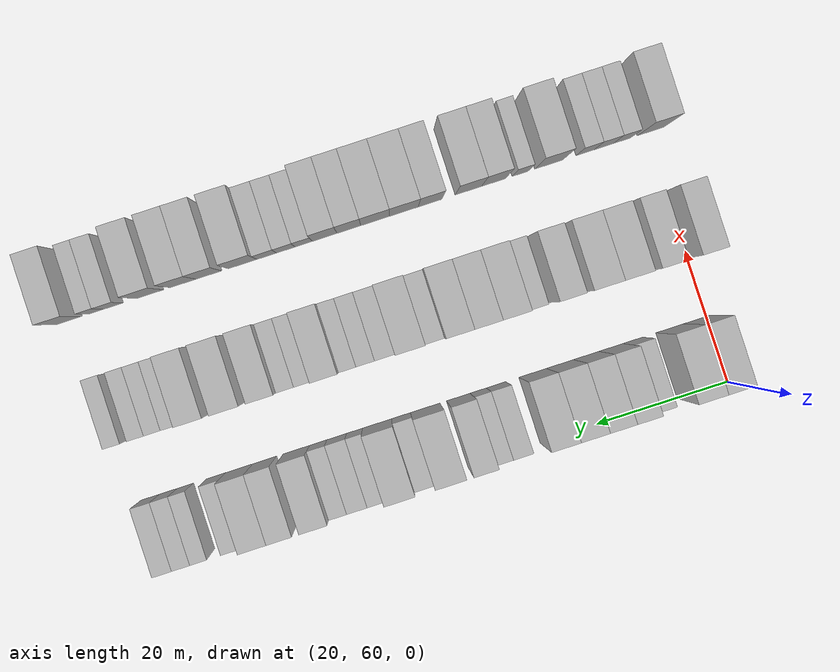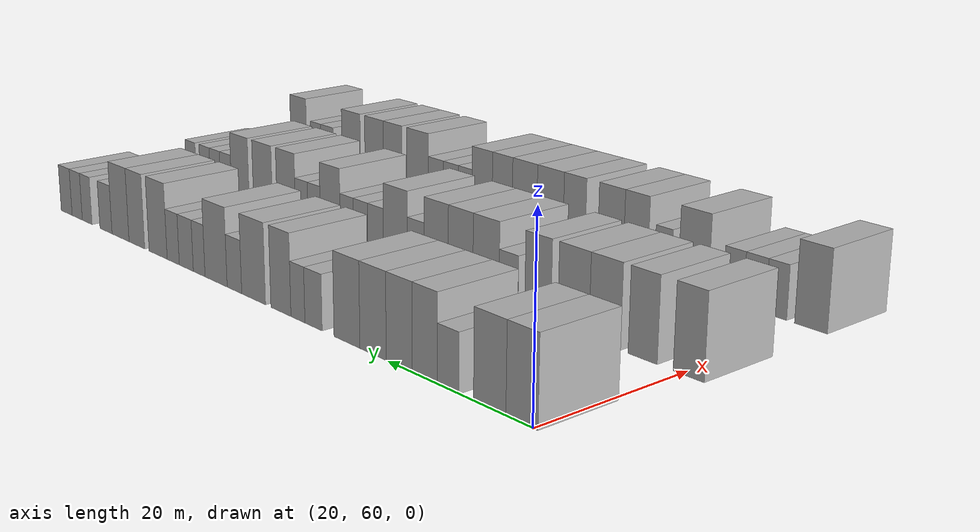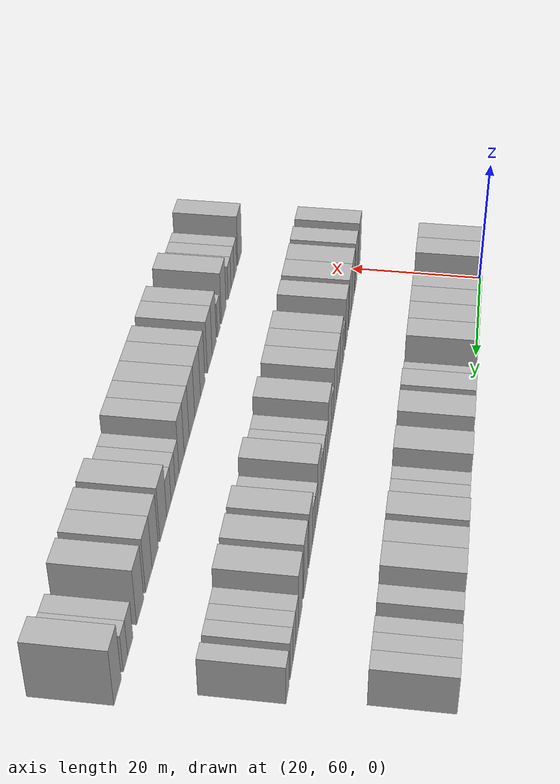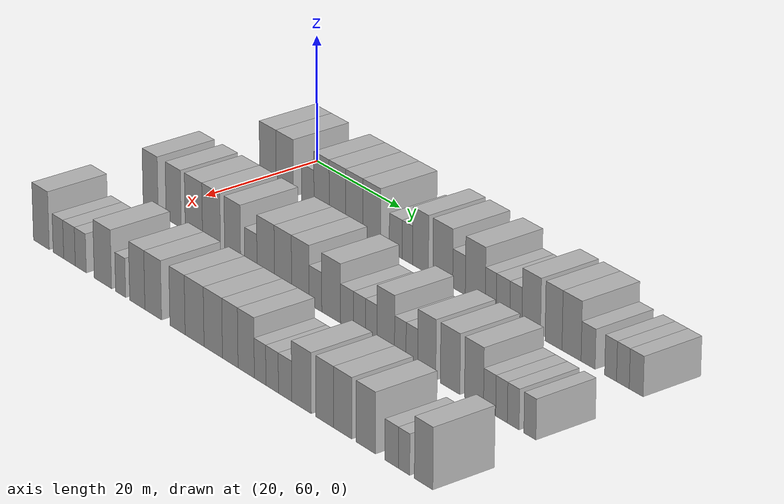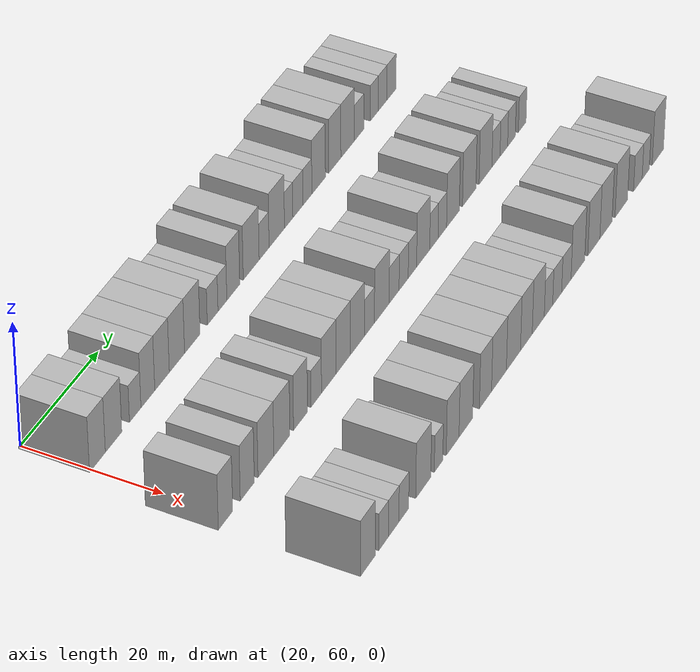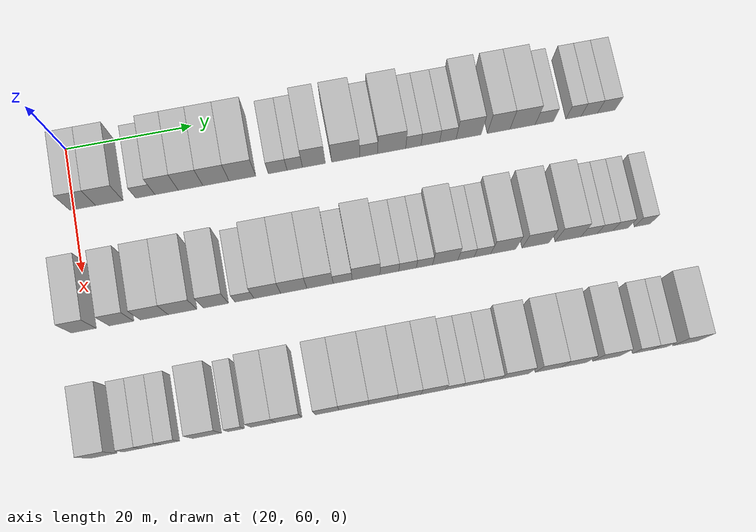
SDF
<sdf version="1.6">
 <world name="default">
  <model name="building_73">
   <static>1</static>
   <pose>25.0000 61.4661 0 0.000000 0.000000 0.000000</pose>
   <link name="link">
    <pose>0 0 4.50 0 0 0</pose>
    <collision name="collision"><geometry><box><size>10.0000 4.0557 9.0000</size></box></geometry></collision>
    <visual name="visual">
     <cast_shadows>0</cast_shadows>
     <geometry><box><size>10.0000 4.0557 9.0000</size></box></geometry>
     <material>
      <script>
       <uri>model://HANNAS_wall/materials/scripts</uri>
       <uri>model://HANNAS_wall/materials/textures</uri>
       <name>vrc/HANNAS_wall</name>
      </script>
     </material>
    </visual>
   </link>
  </model>
  <model name="building_74">
   <static>1</static>
   <pose>25.0000 65.6268 0 0.000000 0.000000 0.000000</pose>
   <link name="link">
    <pose>0 0 4.50 0 0 0</pose>
    <collision name="collision"><geometry><box><size>10.0000 4.2658 9.0000</size></box></geometry></collision>
    <visual name="visual">
     <cast_shadows>0</cast_shadows>
     <geometry><box><size>10.0000 4.2658 9.0000</size></box></geometry>
     <material>
      <script>
       <uri>model://HANNAS_wall/materials/scripts</uri>
       <uri>model://HANNAS_wall/materials/textures</uri>
       <name>vrc/HANNAS_wall</name>
      </script>
     </material>
    </visual>
   </link>
  </model>
  <model name="building_75">
   <static>1</static>
   <pose>25.0000 71.2592 0 0.000000 0.000000 0.000000</pose>
   <link name="link">
    <pose>0 0 3.00 0 0 0</pose>
    <collision name="collision"><geometry><box><size>10.0000 2.9991 6.0000</size></box></geometry></collision>
    <visual name="visual">
     <cast_shadows>0</cast_shadows>
     <geometry><box><size>10.0000 2.9991 6.0000</size></box></geometry>
     <material>
      <script>
       <uri>model://HANNAS_wall/materials/scripts</uri>
       <uri>model://HANNAS_wall/materials/textures</uri>
       <name>vrc/HANNAS_wall</name>
      </script>
     </material>
    </visual>
   </link>
  </model>
  <model name="building_76">
   <static>1</static>
   <pose>25.0000 74.5922 0 0.000000 0.000000 0.000000</pose>
   <link name="link">
    <pose>0 0 4.50 0 0 0</pose>
    <collision name="collision"><geometry><box><size>10.0000 3.6669 9.0000</size></box></geometry></collision>
    <visual name="visual">
     <cast_shadows>0</cast_shadows>
     <geometry><box><size>10.0000 3.6669 9.0000</size></box></geometry>
     <material>
      <script>
       <uri>model://HANNAS_wall/materials/scripts</uri>
       <uri>model://HANNAS_wall/materials/textures</uri>
       <name>vrc/HANNAS_wall</name>
      </script>
     </material>
    </visual>
   </link>
  </model>
  <model name="building_77">
   <static>1</static>
   <pose>25.0000 78.3667 0 0.000000 0.000000 0.000000</pose>
   <link name="link">
    <pose>0 0 4.50 0 0 0</pose>
    <collision name="collision"><geometry><box><size>10.0000 3.8820 9.0000</size></box></geometry></collision>
    <visual name="visual">
     <cast_shadows>0</cast_shadows>
     <geometry><box><size>10.0000 3.8820 9.0000</size></box></geometry>
     <material>
      <script>
       <uri>model://HANNAS_wall/materials/scripts</uri>
       <uri>model://HANNAS_wall/materials/textures</uri>
       <name>vrc/HANNAS_wall</name>
      </script>
     </material>
    </visual>
   </link>
  </model>
  <model name="building_78">
   <static>1</static>
   <pose>25.0000 82.3663 0 0.000000 0.000000 0.000000</pose>
   <link name="link">
    <pose>0 0 4.50 0 0 0</pose>
    <collision name="collision"><geometry><box><size>10.0000 4.1172 9.0000</size></box></geometry></collision>
    <visual name="visual">
     <cast_shadows>0</cast_shadows>
     <geometry><box><size>10.0000 4.1172 9.0000</size></box></geometry>
     <material>
      <script>
       <uri>model://HANNAS_wall/materials/scripts</uri>
       <uri>model://HANNAS_wall/materials/textures</uri>
       <name>vrc/HANNAS_wall</name>
      </script>
     </material>
    </visual>
   </link>
  </model>
  <model name="building_79">
   <static>1</static>
   <pose>25.0000 86.5291 0 0.000000 0.000000 0.000000</pose>
   <link name="link">
    <pose>0 0 4.50 0 0 0</pose>
    <collision name="collision"><geometry><box><size>10.0000 4.2084 9.0000</size></box></geometry></collision>
    <visual name="visual">
     <cast_shadows>0</cast_shadows>
     <geometry><box><size>10.0000 4.2084 9.0000</size></box></geometry>
     <material>
      <script>
       <uri>model://HANNAS_wall/materials/scripts</uri>
       <uri>model://HANNAS_wall/materials/textures</uri>
       <name>vrc/HANNAS_wall</name>
      </script>
     </material>
    </visual>
   </link>
  </model>
  <model name="building_80">
   <static>1</static>
   <pose>25.0000 92.1107 0 0.000000 0.000000 0.000000</pose>
   <link name="link">
    <pose>0 0 3.00 0 0 0</pose>
    <collision name="collision"><geometry><box><size>10.0000 2.9549 6.0000</size></box></geometry></collision>
    <visual name="visual">
     <cast_shadows>0</cast_shadows>
     <geometry><box><size>10.0000 2.9549 6.0000</size></box></geometry>
     <material>
      <script>
       <uri>model://HANNAS_wall/materials/scripts</uri>
       <uri>model://HANNAS_wall/materials/textures</uri>
       <name>vrc/HANNAS_wall</name>
      </script>
     </material>
    </visual>
   </link>
  </model>
  <model name="building_81">
   <static>1</static>
   <pose>25.0000 94.8170 0 0.000000 0.000000 0.000000</pose>
   <link name="link">
    <pose>0 0 3.00 0 0 0</pose>
    <collision name="collision"><geometry><box><size>10.0000 2.4578 6.0000</size></box></geometry></collision>
    <visual name="visual">
     <cast_shadows>0</cast_shadows>
     <geometry><box><size>10.0000 2.4578 6.0000</size></box></geometry>
     <material>
      <script>
       <uri>model://HANNAS_wall/materials/scripts</uri>
       <uri>model://HANNAS_wall/materials/textures</uri>
       <name>vrc/HANNAS_wall</name>
      </script>
     </material>
    </visual>
   </link>
  </model>
  <model name="building_82">
   <static>1</static>
   <pose>25.0000 97.8547 0 0.000000 0.000000 0.000000</pose>
   <link name="link">
    <pose>0 0 4.50 0 0 0</pose>
    <collision name="collision"><geometry><box><size>10.0000 3.6176 9.0000</size></box></geometry></collision>
    <visual name="visual">
     <cast_shadows>0</cast_shadows>
     <geometry><box><size>10.0000 3.6176 9.0000</size></box></geometry>
     <material>
      <script>
       <uri>model://HANNAS_wall/materials/scripts</uri>
       <uri>model://HANNAS_wall/materials/textures</uri>
       <name>vrc/HANNAS_wall</name>
      </script>
     </material>
    </visual>
   </link>
  </model>
  <model name="building_83">
   <static>1</static>
   <pose>25.0000 102.9108 0 0.000000 0.000000 0.000000</pose>
   <link name="link">
    <pose>0 0 4.50 0 0 0</pose>
    <collision name="collision"><geometry><box><size>10.0000 4.4946 9.0000</size></box></geometry></collision>
    <visual name="visual">
     <cast_shadows>0</cast_shadows>
     <geometry><box><size>10.0000 4.4946 9.0000</size></box></geometry>
     <material>
      <script>
       <uri>model://HANNAS_wall/materials/scripts</uri>
       <uri>model://HANNAS_wall/materials/textures</uri>
       <name>vrc/HANNAS_wall</name>
      </script>
     </material>
    </visual>
   </link>
  </model>
  <model name="building_84">
   <static>1</static>
   <pose>25.0000 106.5813 0 0.000000 0.000000 0.000000</pose>
   <link name="link">
    <pose>0 0 3.00 0 0 0</pose>
    <collision name="collision"><geometry><box><size>10.0000 2.8462 6.0000</size></box></geometry></collision>
    <visual name="visual">
     <cast_shadows>0</cast_shadows>
     <geometry><box><size>10.0000 2.8462 6.0000</size></box></geometry>
     <material>
      <script>
       <uri>model://HANNAS_wall/materials/scripts</uri>
       <uri>model://HANNAS_wall/materials/textures</uri>
       <name>vrc/HANNAS_wall</name>
      </script>
     </material>
    </visual>
   </link>
  </model>
  <model name="building_85">
   <static>1</static>
   <pose>25.0000 110.2316 0 0.000000 0.000000 0.000000</pose>
   <link name="link">
    <pose>0 0 4.50 0 0 0</pose>
    <collision name="collision"><geometry><box><size>10.0000 4.4544 9.0000</size></box></geometry></collision>
    <visual name="visual">
     <cast_shadows>0</cast_shadows>
     <geometry><box><size>10.0000 4.4544 9.0000</size></box></geometry>
     <material>
      <script>
       <uri>model://HANNAS_wall/materials/scripts</uri>
       <uri>model://HANNAS_wall/materials/textures</uri>
       <name>vrc/HANNAS_wall</name>
      </script>
     </material>
    </visual>
   </link>
  </model>
  <model name="building_86">
   <static>1</static>
   <pose>25.0000 113.6750 0 0.000000 0.000000 0.000000</pose>
   <link name="link">
    <pose>0 0 3.00 0 0 0</pose>
    <collision name="collision"><geometry><box><size>10.0000 2.4324 6.0000</size></box></geometry></collision>
    <visual name="visual">
     <cast_shadows>0</cast_shadows>
     <geometry><box><size>10.0000 2.4324 6.0000</size></box></geometry>
     <material>
      <script>
       <uri>model://HANNAS_wall/materials/scripts</uri>
       <uri>model://HANNAS_wall/materials/textures</uri>
       <name>vrc/HANNAS_wall</name>
      </script>
     </material>
    </visual>
   </link>
  </model>
  <model name="building_87">
   <static>1</static>
   <pose>25.0000 116.3802 0 0.000000 0.000000 0.000000</pose>
   <link name="link">
    <pose>0 0 3.00 0 0 0</pose>
    <collision name="collision"><geometry><box><size>10.0000 2.9780 6.0000</size></box></geometry></collision>
    <visual name="visual">
     <cast_shadows>0</cast_shadows>
     <geometry><box><size>10.0000 2.9780 6.0000</size></box></geometry>
     <material>
      <script>
       <uri>model://HANNAS_wall/materials/scripts</uri>
       <uri>model://HANNAS_wall/materials/textures</uri>
       <name>vrc/HANNAS_wall</name>
      </script>
     </material>
    </visual>
   </link>
  </model>
  <model name="building_88">
   <static>1</static>
   <pose>25.0000 119.1859 0 0.000000 0.000000 0.000000</pose>
   <link name="link">
    <pose>0 0 3.00 0 0 0</pose>
    <collision name="collision"><geometry><box><size>10.0000 2.6334 6.0000</size></box></geometry></collision>
    <visual name="visual">
     <cast_shadows>0</cast_shadows>
     <geometry><box><size>10.0000 2.6334 6.0000</size></box></geometry>
     <material>
      <script>
       <uri>model://HANNAS_wall/materials/scripts</uri>
       <uri>model://HANNAS_wall/materials/textures</uri>
       <name>vrc/HANNAS_wall</name>
      </script>
     </material>
    </visual>
   </link>
  </model>
  <model name="building_89">
   <static>1</static>
   <pose>25.0000 122.5187 0 0.000000 0.000000 0.000000</pose>
   <link name="link">
    <pose>0 0 4.50 0 0 0</pose>
    <collision name="collision"><geometry><box><size>10.0000 4.0323 9.0000</size></box></geometry></collision>
    <visual name="visual">
     <cast_shadows>0</cast_shadows>
     <geometry><box><size>10.0000 4.0323 9.0000</size></box></geometry>
     <material>
      <script>
       <uri>model://HANNAS_wall/materials/scripts</uri>
       <uri>model://HANNAS_wall/materials/textures</uri>
       <name>vrc/HANNAS_wall</name>
      </script>
     </material>
    </visual>
   </link>
  </model>
  <model name="building_90">
   <static>1</static>
   <pose>25.0000 127.3517 0 0.000000 0.000000 0.000000</pose>
   <link name="link">
    <pose>0 0 4.50 0 0 0</pose>
    <collision name="collision"><geometry><box><size>10.0000 3.6337 9.0000</size></box></geometry></collision>
    <visual name="visual">
     <cast_shadows>0</cast_shadows>
     <geometry><box><size>10.0000 3.6337 9.0000</size></box></geometry>
     <material>
      <script>
       <uri>model://HANNAS_wall/materials/scripts</uri>
       <uri>model://HANNAS_wall/materials/textures</uri>
       <name>vrc/HANNAS_wall</name>
      </script>
     </material>
    </visual>
   </link>
  </model>
  <model name="building_91">
   <static>1</static>
   <pose>25.0000 131.2025 0 0.000000 0.000000 0.000000</pose>
   <link name="link">
    <pose>0 0 4.50 0 0 0</pose>
    <collision name="collision"><geometry><box><size>10.0000 4.0679 9.0000</size></box></geometry></collision>
    <visual name="visual">
     <cast_shadows>0</cast_shadows>
     <geometry><box><size>10.0000 4.0679 9.0000</size></box></geometry>
     <material>
      <script>
       <uri>model://HANNAS_wall/materials/scripts</uri>
       <uri>model://HANNAS_wall/materials/textures</uri>
       <name>vrc/HANNAS_wall</name>
      </script>
     </material>
    </visual>
   </link>
  </model>
  <model name="building_92">
   <static>1</static>
   <pose>25.0000 134.7205 0 0.000000 0.000000 0.000000</pose>
   <link name="link">
    <pose>0 0 3.00 0 0 0</pose>
    <collision name="collision"><geometry><box><size>10.0000 2.9682 6.0000</size></box></geometry></collision>
    <visual name="visual">
     <cast_shadows>0</cast_shadows>
     <geometry><box><size>10.0000 2.9682 6.0000</size></box></geometry>
     <material>
      <script>
       <uri>model://HANNAS_wall/materials/scripts</uri>
       <uri>model://HANNAS_wall/materials/textures</uri>
       <name>vrc/HANNAS_wall</name>
      </script>
     </material>
    </visual>
   </link>
  </model>
  <model name="building_93">
   <static>1</static>
   <pose>25.0000 139.4416 0 0.000000 0.000000 0.000000</pose>
   <link name="link">
    <pose>0 0 3.00 0 0 0</pose>
    <collision name="collision"><geometry><box><size>10.0000 2.4740 6.0000</size></box></geometry></collision>
    <visual name="visual">
     <cast_shadows>0</cast_shadows>
     <geometry><box><size>10.0000 2.4740 6.0000</size></box></geometry>
     <material>
      <script>
       <uri>model://HANNAS_wall/materials/scripts</uri>
       <uri>model://HANNAS_wall/materials/textures</uri>
       <name>vrc/HANNAS_wall</name>
      </script>
     </material>
    </visual>
   </link>
  </model>
  <model name="building_94">
   <static>1</static>
   <pose>25.0000 142.0037 0 0.000000 0.000000 0.000000</pose>
   <link name="link">
    <pose>0 0 3.00 0 0 0</pose>
    <collision name="collision"><geometry><box><size>10.0000 2.6501 6.0000</size></box></geometry></collision>
    <visual name="visual">
     <cast_shadows>0</cast_shadows>
     <geometry><box><size>10.0000 2.6501 6.0000</size></box></geometry>
     <material>
      <script>
       <uri>model://HANNAS_wall/materials/scripts</uri>
       <uri>model://HANNAS_wall/materials/textures</uri>
       <name>vrc/HANNAS_wall</name>
      </script>
     </material>
    </visual>
   </link>
  </model>
  <model name="building_95">
   <static>1</static>
   <pose>25.0000 144.7616 0 0.000000 0.000000 0.000000</pose>
   <link name="link">
    <pose>0 0 3.00 0 0 0</pose>
    <collision name="collision"><geometry><box><size>10.0000 2.8657 6.0000</size></box></geometry></collision>
    <visual name="visual">
     <cast_shadows>0</cast_shadows>
     <geometry><box><size>10.0000 2.8657 6.0000</size></box></geometry>
     <material>
      <script>
       <uri>model://HANNAS_wall/materials/scripts</uri>
       <uri>model://HANNAS_wall/materials/textures</uri>
       <name>vrc/HANNAS_wall</name>
      </script>
     </material>
    </visual>
   </link>
  </model>
  <model name="building_182">
   <static>1</static>
   <pose>44.0000 59.0636 0 0.000000 0.000000 0.000000</pose>
   <link name="link">
    <pose>0 0 4.50 0 0 0</pose>
    <collision name="collision"><geometry><box><size>10.0000 3.7838 9.0000</size></box></geometry></collision>
    <visual name="visual">
     <cast_shadows>0</cast_shadows>
     <geometry><box><size>10.0000 3.7838 9.0000</size></box></geometry>
     <material>
      <script>
       <uri>model://HANNAS_wall/materials/scripts</uri>
       <uri>model://HANNAS_wall/materials/textures</uri>
       <name>vrc/HANNAS_wall</name>
      </script>
     </material>
    </visual>
   </link>
  </model>
  <model name="building_183">
   <static>1</static>
   <pose>44.0000 64.8311 0 0.000000 0.000000 0.000000</pose>
   <link name="link">
    <pose>0 0 4.50 0 0 0</pose>
    <collision name="collision"><geometry><box><size>10.0000 3.7510 9.0000</size></box></geometry></collision>
    <visual name="visual">
     <cast_shadows>0</cast_shadows>
     <geometry><box><size>10.0000 3.7510 9.0000</size></box></geometry>
     <material>
      <script>
       <uri>model://HANNAS_wall/materials/scripts</uri>
       <uri>model://HANNAS_wall/materials/textures</uri>
       <name>vrc/HANNAS_wall</name>
      </script>
     </material>
    </visual>
   </link>
  </model>
  <model name="building_184">
   <static>1</static>
   <pose>44.0000 69.8425 0 0.000000 0.000000 0.000000</pose>
   <link name="link">
    <pose>0 0 4.50 0 0 0</pose>
    <collision name="collision"><geometry><box><size>10.0000 4.2718 9.0000</size></box></geometry></collision>
    <visual name="visual">
     <cast_shadows>0</cast_shadows>
     <geometry><box><size>10.0000 4.2718 9.0000</size></box></geometry>
     <material>
      <script>
       <uri>model://HANNAS_wall/materials/scripts</uri>
       <uri>model://HANNAS_wall/materials/textures</uri>
       <name>vrc/HANNAS_wall</name>
      </script>
     </material>
    </visual>
   </link>
  </model>
  <model name="building_185">
   <static>1</static>
   <pose>44.0000 74.1787 0 0.000000 0.000000 0.000000</pose>
   <link name="link">
    <pose>0 0 4.50 0 0 0</pose>
    <collision name="collision"><geometry><box><size>10.0000 4.4006 9.0000</size></box></geometry></collision>
    <visual name="visual">
     <cast_shadows>0</cast_shadows>
     <geometry><box><size>10.0000 4.4006 9.0000</size></box></geometry>
     <material>
      <script>
       <uri>model://HANNAS_wall/materials/scripts</uri>
       <uri>model://HANNAS_wall/materials/textures</uri>
       <name>vrc/HANNAS_wall</name>
      </script>
     </material>
    </visual>
   </link>
  </model>
  <model name="building_186">
   <static>1</static>
   <pose>44.0000 79.3093 0 0.000000 0.000000 0.000000</pose>
   <link name="link">
    <pose>0 0 4.50 0 0 0</pose>
    <collision name="collision"><geometry><box><size>10.0000 3.8606 9.0000</size></box></geometry></collision>
    <visual name="visual">
     <cast_shadows>0</cast_shadows>
     <geometry><box><size>10.0000 3.8606 9.0000</size></box></geometry>
     <material>
      <script>
       <uri>model://HANNAS_wall/materials/scripts</uri>
       <uri>model://HANNAS_wall/materials/textures</uri>
       <name>vrc/HANNAS_wall</name>
      </script>
     </material>
    </visual>
   </link>
  </model>
  <model name="building_187">
   <static>1</static>
   <pose>44.0000 83.7086 0 0.000000 0.000000 0.000000</pose>
   <link name="link">
    <pose>0 0 3.00 0 0 0</pose>
    <collision name="collision"><geometry><box><size>10.0000 2.9380 6.0000</size></box></geometry></collision>
    <visual name="visual">
     <cast_shadows>0</cast_shadows>
     <geometry><box><size>10.0000 2.9380 6.0000</size></box></geometry>
     <material>
      <script>
       <uri>model://HANNAS_wall/materials/scripts</uri>
       <uri>model://HANNAS_wall/materials/textures</uri>
       <name>vrc/HANNAS_wall</name>
      </script>
     </material>
    </visual>
   </link>
  </model>
  <model name="building_188">
   <static>1</static>
   <pose>44.0000 87.2473 0 0.000000 0.000000 0.000000</pose>
   <link name="link">
    <pose>0 0 4.50 0 0 0</pose>
    <collision name="collision"><geometry><box><size>10.0000 4.1395 9.0000</size></box></geometry></collision>
    <visual name="visual">
     <cast_shadows>0</cast_shadows>
     <geometry><box><size>10.0000 4.1395 9.0000</size></box></geometry>
     <material>
      <script>
       <uri>model://HANNAS_wall/materials/scripts</uri>
       <uri>model://HANNAS_wall/materials/textures</uri>
       <name>vrc/HANNAS_wall</name>
      </script>
     </material>
    </visual>
   </link>
  </model>
  <model name="building_189">
   <static>1</static>
   <pose>44.0000 91.3339 0 0.000000 0.000000 0.000000</pose>
   <link name="link">
    <pose>0 0 4.50 0 0 0</pose>
    <collision name="collision"><geometry><box><size>10.0000 4.0336 9.0000</size></box></geometry></collision>
    <visual name="visual">
     <cast_shadows>0</cast_shadows>
     <geometry><box><size>10.0000 4.0336 9.0000</size></box></geometry>
     <material>
      <script>
       <uri>model://HANNAS_wall/materials/scripts</uri>
       <uri>model://HANNAS_wall/materials/textures</uri>
       <name>vrc/HANNAS_wall</name>
      </script>
     </material>
    </visual>
   </link>
  </model>
  <model name="building_190">
   <static>1</static>
   <pose>44.0000 95.3903 0 0.000000 0.000000 0.000000</pose>
   <link name="link">
    <pose>0 0 4.50 0 0 0</pose>
    <collision name="collision"><geometry><box><size>10.0000 4.0792 9.0000</size></box></geometry></collision>
    <visual name="visual">
     <cast_shadows>0</cast_shadows>
     <geometry><box><size>10.0000 4.0792 9.0000</size></box></geometry>
     <material>
      <script>
       <uri>model://HANNAS_wall/materials/scripts</uri>
       <uri>model://HANNAS_wall/materials/textures</uri>
       <name>vrc/HANNAS_wall</name>
      </script>
     </material>
    </visual>
   </link>
  </model>
  <model name="building_191">
   <static>1</static>
   <pose>44.0000 98.8957 0 0.000000 0.000000 0.000000</pose>
   <link name="link">
    <pose>0 0 3.00 0 0 0</pose>
    <collision name="collision"><geometry><box><size>10.0000 2.9317 6.0000</size></box></geometry></collision>
    <visual name="visual">
     <cast_shadows>0</cast_shadows>
     <geometry><box><size>10.0000 2.9317 6.0000</size></box></geometry>
     <material>
      <script>
       <uri>model://HANNAS_wall/materials/scripts</uri>
       <uri>model://HANNAS_wall/materials/textures</uri>
       <name>vrc/HANNAS_wall</name>
      </script>
     </material>
    </visual>
   </link>
  </model>
  <model name="building_192">
   <static>1</static>
   <pose>44.0000 102.5265 0 0.000000 0.000000 0.000000</pose>
   <link name="link">
    <pose>0 0 4.50 0 0 0</pose>
    <collision name="collision"><geometry><box><size>10.0000 4.3298 9.0000</size></box></geometry></collision>
    <visual name="visual">
     <cast_shadows>0</cast_shadows>
     <geometry><box><size>10.0000 4.3298 9.0000</size></box></geometry>
     <material>
      <script>
       <uri>model://HANNAS_wall/materials/scripts</uri>
       <uri>model://HANNAS_wall/materials/textures</uri>
       <name>vrc/HANNAS_wall</name>
      </script>
     </material>
    </visual>
   </link>
  </model>
  <model name="building_193">
   <static>1</static>
   <pose>44.0000 106.1554 0 0.000000 0.000000 0.000000</pose>
   <link name="link">
    <pose>0 0 3.00 0 0 0</pose>
    <collision name="collision"><geometry><box><size>10.0000 2.9280 6.0000</size></box></geometry></collision>
    <visual name="visual">
     <cast_shadows>0</cast_shadows>
     <geometry><box><size>10.0000 2.9280 6.0000</size></box></geometry>
     <material>
      <script>
       <uri>model://HANNAS_wall/materials/scripts</uri>
       <uri>model://HANNAS_wall/materials/textures</uri>
       <name>vrc/HANNAS_wall</name>
      </script>
     </material>
    </visual>
   </link>
  </model>
  <model name="building_194">
   <static>1</static>
   <pose>44.0000 108.9826 0 0.000000 0.000000 0.000000</pose>
   <link name="link">
    <pose>0 0 3.00 0 0 0</pose>
    <collision name="collision"><geometry><box><size>10.0000 2.7265 6.0000</size></box></geometry></collision>
    <visual name="visual">
     <cast_shadows>0</cast_shadows>
     <geometry><box><size>10.0000 2.7265 6.0000</size></box></geometry>
     <material>
      <script>
       <uri>model://HANNAS_wall/materials/scripts</uri>
       <uri>model://HANNAS_wall/materials/textures</uri>
       <name>vrc/HANNAS_wall</name>
      </script>
     </material>
    </visual>
   </link>
  </model>
  <model name="building_195">
   <static>1</static>
   <pose>44.0000 111.6137 0 0.000000 0.000000 0.000000</pose>
   <link name="link">
    <pose>0 0 3.00 0 0 0</pose>
    <collision name="collision"><geometry><box><size>10.0000 2.5357 6.0000</size></box></geometry></collision>
    <visual name="visual">
     <cast_shadows>0</cast_shadows>
     <geometry><box><size>10.0000 2.5357 6.0000</size></box></geometry>
     <material>
      <script>
       <uri>model://HANNAS_wall/materials/scripts</uri>
       <uri>model://HANNAS_wall/materials/textures</uri>
       <name>vrc/HANNAS_wall</name>
      </script>
     </material>
    </visual>
   </link>
  </model>
  <model name="building_196">
   <static>1</static>
   <pose>44.0000 114.8626 0 0.000000 0.000000 0.000000</pose>
   <link name="link">
    <pose>0 0 4.50 0 0 0</pose>
    <collision name="collision"><geometry><box><size>10.0000 3.9621 9.0000</size></box></geometry></collision>
    <visual name="visual">
     <cast_shadows>0</cast_shadows>
     <geometry><box><size>10.0000 3.9621 9.0000</size></box></geometry>
     <material>
      <script>
       <uri>model://HANNAS_wall/materials/scripts</uri>
       <uri>model://HANNAS_wall/materials/textures</uri>
       <name>vrc/HANNAS_wall</name>
      </script>
     </material>
    </visual>
   </link>
  </model>
  <model name="building_197">
   <static>1</static>
   <pose>44.0000 118.1167 0 0.000000 0.000000 0.000000</pose>
   <link name="link">
    <pose>0 0 3.00 0 0 0</pose>
    <collision name="collision"><geometry><box><size>10.0000 2.5459 6.0000</size></box></geometry></collision>
    <visual name="visual">
     <cast_shadows>0</cast_shadows>
     <geometry><box><size>10.0000 2.5459 6.0000</size></box></geometry>
     <material>
      <script>
       <uri>model://HANNAS_wall/materials/scripts</uri>
       <uri>model://HANNAS_wall/materials/textures</uri>
       <name>vrc/HANNAS_wall</name>
      </script>
     </material>
    </visual>
   </link>
  </model>
  <model name="building_198">
   <static>1</static>
   <pose>44.0000 120.6899 0 0.000000 0.000000 0.000000</pose>
   <link name="link">
    <pose>0 0 3.00 0 0 0</pose>
    <collision name="collision"><geometry><box><size>10.0000 2.6006 6.0000</size></box></geometry></collision>
    <visual name="visual">
     <cast_shadows>0</cast_shadows>
     <geometry><box><size>10.0000 2.6006 6.0000</size></box></geometry>
     <material>
      <script>
       <uri>model://HANNAS_wall/materials/scripts</uri>
       <uri>model://HANNAS_wall/materials/textures</uri>
       <name>vrc/HANNAS_wall</name>
      </script>
     </material>
    </visual>
   </link>
  </model>
  <model name="building_199">
   <static>1</static>
   <pose>44.0000 123.9603 0 0.000000 0.000000 0.000000</pose>
   <link name="link">
    <pose>0 0 4.50 0 0 0</pose>
    <collision name="collision"><geometry><box><size>10.0000 3.9403 9.0000</size></box></geometry></collision>
    <visual name="visual">
     <cast_shadows>0</cast_shadows>
     <geometry><box><size>10.0000 3.9403 9.0000</size></box></geometry>
     <material>
      <script>
       <uri>model://HANNAS_wall/materials/scripts</uri>
       <uri>model://HANNAS_wall/materials/textures</uri>
       <name>vrc/HANNAS_wall</name>
      </script>
     </material>
    </visual>
   </link>
  </model>
  <model name="building_200">
   <static>1</static>
   <pose>44.0000 129.0367 0 0.000000 0.000000 0.000000</pose>
   <link name="link">
    <pose>0 0 4.50 0 0 0</pose>
    <collision name="collision"><geometry><box><size>10.0000 4.2123 9.0000</size></box></geometry></collision>
    <visual name="visual">
     <cast_shadows>0</cast_shadows>
     <geometry><box><size>10.0000 4.2123 9.0000</size></box></geometry>
     <material>
      <script>
       <uri>model://HANNAS_wall/materials/scripts</uri>
       <uri>model://HANNAS_wall/materials/textures</uri>
       <name>vrc/HANNAS_wall</name>
      </script>
     </material>
    </visual>
   </link>
  </model>
  <model name="building_201">
   <static>1</static>
   <pose>44.0000 134.1683 0 0.000000 0.000000 0.000000</pose>
   <link name="link">
    <pose>0 0 4.50 0 0 0</pose>
    <collision name="collision"><geometry><box><size>10.0000 4.0510 9.0000</size></box></geometry></collision>
    <visual name="visual">
     <cast_shadows>0</cast_shadows>
     <geometry><box><size>10.0000 4.0510 9.0000</size></box></geometry>
     <material>
      <script>
       <uri>model://HANNAS_wall/materials/scripts</uri>
       <uri>model://HANNAS_wall/materials/textures</uri>
       <name>vrc/HANNAS_wall</name>
      </script>
     </material>
    </visual>
   </link>
  </model>
  <model name="building_202">
   <static>1</static>
   <pose>44.0000 137.4851 0 0.000000 0.000000 0.000000</pose>
   <link name="link">
    <pose>0 0 3.00 0 0 0</pose>
    <collision name="collision"><geometry><box><size>10.0000 2.5825 6.0000</size></box></geometry></collision>
    <visual name="visual">
     <cast_shadows>0</cast_shadows>
     <geometry><box><size>10.0000 2.5825 6.0000</size></box></geometry>
     <material>
      <script>
       <uri>model://HANNAS_wall/materials/scripts</uri>
       <uri>model://HANNAS_wall/materials/textures</uri>
       <name>vrc/HANNAS_wall</name>
      </script>
     </material>
    </visual>
   </link>
  </model>
  <model name="building_203">
   <static>1</static>
   <pose>44.0000 139.9991 0 0.000000 0.000000 0.000000</pose>
   <link name="link">
    <pose>0 0 3.00 0 0 0</pose>
    <collision name="collision"><geometry><box><size>10.0000 2.4455 6.0000</size></box></geometry></collision>
    <visual name="visual">
     <cast_shadows>0</cast_shadows>
     <geometry><box><size>10.0000 2.4455 6.0000</size></box></geometry>
     <material>
      <script>
       <uri>model://HANNAS_wall/materials/scripts</uri>
       <uri>model://HANNAS_wall/materials/textures</uri>
       <name>vrc/HANNAS_wall</name>
      </script>
     </material>
    </visual>
   </link>
  </model>
  <model name="building_204">
   <static>1</static>
   <pose>44.0000 142.4613 0 0.000000 0.000000 0.000000</pose>
   <link name="link">
    <pose>0 0 3.00 0 0 0</pose>
    <collision name="collision"><geometry><box><size>10.0000 2.4789 6.0000</size></box></geometry></collision>
    <visual name="visual">
     <cast_shadows>0</cast_shadows>
     <geometry><box><size>10.0000 2.4789 6.0000</size></box></geometry>
     <material>
      <script>
       <uri>model://HANNAS_wall/materials/scripts</uri>
       <uri>model://HANNAS_wall/materials/textures</uri>
       <name>vrc/HANNAS_wall</name>
      </script>
     </material>
    </visual>
   </link>
  </model>
  <model name="building_205">
   <static>1</static>
   <pose>44.0000 145.9538 0 0.000000 0.000000 0.000000</pose>
   <link name="link">
    <pose>0 0 3.00 0 0 0</pose>
    <collision name="collision"><geometry><box><size>10.0000 2.5062 6.0000</size></box></geometry></collision>
    <visual name="visual">
     <cast_shadows>0</cast_shadows>
     <geometry><box><size>10.0000 2.5062 6.0000</size></box></geometry>
     <material>
      <script>
       <uri>model://HANNAS_wall/materials/scripts</uri>
       <uri>model://HANNAS_wall/materials/textures</uri>
       <name>vrc/HANNAS_wall</name>
      </script>
     </material>
    </visual>
   </link>
  </model>
  <model name="building_306">
   <static>1</static>
   <pose>63.0000 59.4543 0 0.000000 0.000000 0.000000</pose>
   <link name="link">
    <pose>0 0 4.50 0 0 0</pose>
    <collision name="collision"><geometry><box><size>10.0000 4.0204 9.0000</size></box></geometry></collision>
    <visual name="visual">
     <cast_shadows>0</cast_shadows>
     <geometry><box><size>10.0000 4.0204 9.0000</size></box></geometry>
     <material>
      <script>
       <uri>model://HANNAS_wall/materials/scripts</uri>
       <uri>model://HANNAS_wall/materials/textures</uri>
       <name>vrc/HANNAS_wall</name>
      </script>
     </material>
    </visual>
   </link>
  </model>
  <model name="building_307">
   <static>1</static>
   <pose>63.0000 63.8000 0 0.000000 0.000000 0.000000</pose>
   <link name="link">
    <pose>0 0 3.00 0 0 0</pose>
    <collision name="collision"><geometry><box><size>10.0000 2.6710 6.0000</size></box></geometry></collision>
    <visual name="visual">
     <cast_shadows>0</cast_shadows>
     <geometry><box><size>10.0000 2.6710 6.0000</size></box></geometry>
     <material>
      <script>
       <uri>model://HANNAS_wall/materials/scripts</uri>
       <uri>model://HANNAS_wall/materials/textures</uri>
       <name>vrc/HANNAS_wall</name>
      </script>
     </material>
    </visual>
   </link>
  </model>
  <model name="building_308">
   <static>1</static>
   <pose>63.0000 66.5948 0 0.000000 0.000000 0.000000</pose>
   <link name="link">
    <pose>0 0 3.00 0 0 0</pose>
    <collision name="collision"><geometry><box><size>10.0000 2.9187 6.0000</size></box></geometry></collision>
    <visual name="visual">
     <cast_shadows>0</cast_shadows>
     <geometry><box><size>10.0000 2.9187 6.0000</size></box></geometry>
     <material>
      <script>
       <uri>model://HANNAS_wall/materials/scripts</uri>
       <uri>model://HANNAS_wall/materials/textures</uri>
       <name>vrc/HANNAS_wall</name>
      </script>
     </material>
    </visual>
   </link>
  </model>
  <model name="building_309">
   <static>1</static>
   <pose>63.0000 69.4298 0 0.000000 0.000000 0.000000</pose>
   <link name="link">
    <pose>0 0 3.00 0 0 0</pose>
    <collision name="collision"><geometry><box><size>10.0000 2.7515 6.0000</size></box></geometry></collision>
    <visual name="visual">
     <cast_shadows>0</cast_shadows>
     <geometry><box><size>10.0000 2.7515 6.0000</size></box></geometry>
     <material>
      <script>
       <uri>model://HANNAS_wall/materials/scripts</uri>
       <uri>model://HANNAS_wall/materials/textures</uri>
       <name>vrc/HANNAS_wall</name>
      </script>
     </material>
    </visual>
   </link>
  </model>
  <model name="building_310">
   <static>1</static>
   <pose>63.0000 74.9470 0 0.000000 0.000000 0.000000</pose>
   <link name="link">
    <pose>0 0 4.50 0 0 0</pose>
    <collision name="collision"><geometry><box><size>10.0000 4.2828 9.0000</size></box></geometry></collision>
    <visual name="visual">
     <cast_shadows>0</cast_shadows>
     <geometry><box><size>10.0000 4.2828 9.0000</size></box></geometry>
     <material>
      <script>
       <uri>model://HANNAS_wall/materials/scripts</uri>
       <uri>model://HANNAS_wall/materials/textures</uri>
       <name>vrc/HANNAS_wall</name>
      </script>
     </material>
    </visual>
   </link>
  </model>
  <model name="building_311">
   <static>1</static>
   <pose>63.0000 79.3148 0 0.000000 0.000000 0.000000</pose>
   <link name="link">
    <pose>0 0 3.00 0 0 0</pose>
    <collision name="collision"><geometry><box><size>10.0000 2.4529 6.0000</size></box></geometry></collision>
    <visual name="visual">
     <cast_shadows>0</cast_shadows>
     <geometry><box><size>10.0000 2.4529 6.0000</size></box></geometry>
     <material>
      <script>
       <uri>model://HANNAS_wall/materials/scripts</uri>
       <uri>model://HANNAS_wall/materials/textures</uri>
       <name>vrc/HANNAS_wall</name>
      </script>
     </material>
    </visual>
   </link>
  </model>
  <model name="building_312">
   <static>1</static>
   <pose>63.0000 83.3844 0 0.000000 0.000000 0.000000</pose>
   <link name="link">
    <pose>0 0 4.50 0 0 0</pose>
    <collision name="collision"><geometry><box><size>10.0000 3.6863 9.0000</size></box></geometry></collision>
    <visual name="visual">
     <cast_shadows>0</cast_shadows>
     <geometry><box><size>10.0000 3.6863 9.0000</size></box></geometry>
     <material>
      <script>
       <uri>model://HANNAS_wall/materials/scripts</uri>
       <uri>model://HANNAS_wall/materials/textures</uri>
       <name>vrc/HANNAS_wall</name>
      </script>
     </material>
    </visual>
   </link>
  </model>
  <model name="building_313">
   <static>1</static>
   <pose>63.0000 87.2338 0 0.000000 0.000000 0.000000</pose>
   <link name="link">
    <pose>0 0 4.50 0 0 0</pose>
    <collision name="collision"><geometry><box><size>10.0000 4.0124 9.0000</size></box></geometry></collision>
    <visual name="visual">
     <cast_shadows>0</cast_shadows>
     <geometry><box><size>10.0000 4.0124 9.0000</size></box></geometry>
     <material>
      <script>
       <uri>model://HANNAS_wall/materials/scripts</uri>
       <uri>model://HANNAS_wall/materials/textures</uri>
       <name>vrc/HANNAS_wall</name>
      </script>
     </material>
    </visual>
   </link>
  </model>
  <model name="building_314">
   <static>1</static>
   <pose>63.0000 93.0491 0 0.000000 0.000000 0.000000</pose>
   <link name="link">
    <pose>0 0 4.50 0 0 0</pose>
    <collision name="collision"><geometry><box><size>10.0000 3.6183 9.0000</size></box></geometry></collision>
    <visual name="visual">
     <cast_shadows>0</cast_shadows>
     <geometry><box><size>10.0000 3.6183 9.0000</size></box></geometry>
     <material>
      <script>
       <uri>model://HANNAS_wall/materials/scripts</uri>
       <uri>model://HANNAS_wall/materials/textures</uri>
       <name>vrc/HANNAS_wall</name>
      </script>
     </material>
    </visual>
   </link>
  </model>
  <model name="building_315">
   <static>1</static>
   <pose>63.0000 97.0889 0 0.000000 0.000000 0.000000</pose>
   <link name="link">
    <pose>0 0 4.50 0 0 0</pose>
    <collision name="collision"><geometry><box><size>10.0000 4.4613 9.0000</size></box></geometry></collision>
    <visual name="visual">
     <cast_shadows>0</cast_shadows>
     <geometry><box><size>10.0000 4.4613 9.0000</size></box></geometry>
     <material>
      <script>
       <uri>model://HANNAS_wall/materials/scripts</uri>
       <uri>model://HANNAS_wall/materials/textures</uri>
       <name>vrc/HANNAS_wall</name>
      </script>
     </material>
    </visual>
   </link>
  </model>
  <model name="building_316">
   <static>1</static>
   <pose>63.0000 101.4672 0 0.000000 0.000000 0.000000</pose>
   <link name="link">
    <pose>0 0 4.50 0 0 0</pose>
    <collision name="collision"><geometry><box><size>10.0000 4.2955 9.0000</size></box></geometry></collision>
    <visual name="visual">
     <cast_shadows>0</cast_shadows>
     <geometry><box><size>10.0000 4.2955 9.0000</size></box></geometry>
     <material>
      <script>
       <uri>model://HANNAS_wall/materials/scripts</uri>
       <uri>model://HANNAS_wall/materials/textures</uri>
       <name>vrc/HANNAS_wall</name>
      </script>
     </material>
    </visual>
   </link>
  </model>
  <model name="building_317">
   <static>1</static>
   <pose>63.0000 105.4167 0 0.000000 0.000000 0.000000</pose>
   <link name="link">
    <pose>0 0 4.50 0 0 0</pose>
    <collision name="collision"><geometry><box><size>10.0000 3.6035 9.0000</size></box></geometry></collision>
    <visual name="visual">
     <cast_shadows>0</cast_shadows>
     <geometry><box><size>10.0000 3.6035 9.0000</size></box></geometry>
     <material>
      <script>
       <uri>model://HANNAS_wall/materials/scripts</uri>
       <uri>model://HANNAS_wall/materials/textures</uri>
       <name>vrc/HANNAS_wall</name>
      </script>
     </material>
    </visual>
   </link>
  </model>
  <model name="building_318">
   <static>1</static>
   <pose>63.0000 109.0880 0 0.000000 0.000000 0.000000</pose>
   <link name="link">
    <pose>0 0 4.50 0 0 0</pose>
    <collision name="collision"><geometry><box><size>10.0000 3.7391 9.0000</size></box></geometry></collision>
    <visual name="visual">
     <cast_shadows>0</cast_shadows>
     <geometry><box><size>10.0000 3.7391 9.0000</size></box></geometry>
     <material>
      <script>
       <uri>model://HANNAS_wall/materials/scripts</uri>
       <uri>model://HANNAS_wall/materials/textures</uri>
       <name>vrc/HANNAS_wall</name>
      </script>
     </material>
    </visual>
   </link>
  </model>
  <model name="building_319">
   <static>1</static>
   <pose>63.0000 112.2731 0 0.000000 0.000000 0.000000</pose>
   <link name="link">
    <pose>0 0 3.00 0 0 0</pose>
    <collision name="collision"><geometry><box><size>10.0000 2.6309 6.0000</size></box></geometry></collision>
    <visual name="visual">
     <cast_shadows>0</cast_shadows>
     <geometry><box><size>10.0000 2.6309 6.0000</size></box></geometry>
     <material>
      <script>
       <uri>model://HANNAS_wall/materials/scripts</uri>
       <uri>model://HANNAS_wall/materials/textures</uri>
       <name>vrc/HANNAS_wall</name>
      </script>
     </material>
    </visual>
   </link>
  </model>
  <model name="building_320">
   <static>1</static>
   <pose>63.0000 115.0044 0 0.000000 0.000000 0.000000</pose>
   <link name="link">
    <pose>0 0 3.00 0 0 0</pose>
    <collision name="collision"><geometry><box><size>10.0000 2.8318 6.0000</size></box></geometry></collision>
    <visual name="visual">
     <cast_shadows>0</cast_shadows>
     <geometry><box><size>10.0000 2.8318 6.0000</size></box></geometry>
     <material>
      <script>
       <uri>model://HANNAS_wall/materials/scripts</uri>
       <uri>model://HANNAS_wall/materials/textures</uri>
       <name>vrc/HANNAS_wall</name>
      </script>
     </material>
    </visual>
   </link>
  </model>
  <model name="building_321">
   <static>1</static>
   <pose>63.0000 117.9088 0 0.000000 0.000000 0.000000</pose>
   <link name="link">
    <pose>0 0 3.00 0 0 0</pose>
    <collision name="collision"><geometry><box><size>10.0000 2.9769 6.0000</size></box></geometry></collision>
    <visual name="visual">
     <cast_shadows>0</cast_shadows>
     <geometry><box><size>10.0000 2.9769 6.0000</size></box></geometry>
     <material>
      <script>
       <uri>model://HANNAS_wall/materials/scripts</uri>
       <uri>model://HANNAS_wall/materials/textures</uri>
       <name>vrc/HANNAS_wall</name>
      </script>
     </material>
    </visual>
   </link>
  </model>
  <model name="building_322">
   <static>1</static>
   <pose>63.0000 121.5822 0 0.000000 0.000000 0.000000</pose>
   <link name="link">
    <pose>0 0 4.50 0 0 0</pose>
    <collision name="collision"><geometry><box><size>10.0000 4.3699 9.0000</size></box></geometry></collision>
    <visual name="visual">
     <cast_shadows>0</cast_shadows>
     <geometry><box><size>10.0000 4.3699 9.0000</size></box></geometry>
     <material>
      <script>
       <uri>model://HANNAS_wall/materials/scripts</uri>
       <uri>model://HANNAS_wall/materials/textures</uri>
       <name>vrc/HANNAS_wall</name>
      </script>
     </material>
    </visual>
   </link>
  </model>
  <model name="building_323">
   <static>1</static>
   <pose>63.0000 126.7127 0 0.000000 0.000000 0.000000</pose>
   <link name="link">
    <pose>0 0 4.50 0 0 0</pose>
    <collision name="collision"><geometry><box><size>10.0000 3.8911 9.0000</size></box></geometry></collision>
    <visual name="visual">
     <cast_shadows>0</cast_shadows>
     <geometry><box><size>10.0000 3.8911 9.0000</size></box></geometry>
     <material>
      <script>
       <uri>model://HANNAS_wall/materials/scripts</uri>
       <uri>model://HANNAS_wall/materials/textures</uri>
       <name>vrc/HANNAS_wall</name>
      </script>
     </material>
    </visual>
   </link>
  </model>
  <model name="building_324">
   <static>1</static>
   <pose>63.0000 130.6483 0 0.000000 0.000000 0.000000</pose>
   <link name="link">
    <pose>0 0 4.50 0 0 0</pose>
    <collision name="collision"><geometry><box><size>10.0000 3.9800 9.0000</size></box></geometry></collision>
    <visual name="visual">
     <cast_shadows>0</cast_shadows>
     <geometry><box><size>10.0000 3.9800 9.0000</size></box></geometry>
     <material>
      <script>
       <uri>model://HANNAS_wall/materials/scripts</uri>
       <uri>model://HANNAS_wall/materials/textures</uri>
       <name>vrc/HANNAS_wall</name>
      </script>
     </material>
    </visual>
   </link>
  </model>
  <model name="building_325">
   <static>1</static>
   <pose>63.0000 135.7075 0 0.000000 0.000000 0.000000</pose>
   <link name="link">
    <pose>0 0 4.50 0 0 0</pose>
    <collision name="collision"><geometry><box><size>10.0000 4.1384 9.0000</size></box></geometry></collision>
    <visual name="visual">
     <cast_shadows>0</cast_shadows>
     <geometry><box><size>10.0000 4.1384 9.0000</size></box></geometry>
     <material>
      <script>
       <uri>model://HANNAS_wall/materials/scripts</uri>
       <uri>model://HANNAS_wall/materials/textures</uri>
       <name>vrc/HANNAS_wall</name>
      </script>
     </material>
    </visual>
   </link>
  </model>
  <model name="building_326">
   <static>1</static>
   <pose>63.0000 141.2104 0 0.000000 0.000000 0.000000</pose>
   <link name="link">
    <pose>0 0 3.00 0 0 0</pose>
    <collision name="collision"><geometry><box><size>10.0000 2.8673 6.0000</size></box></geometry></collision>
    <visual name="visual">
     <cast_shadows>0</cast_shadows>
     <geometry><box><size>10.0000 2.8673 6.0000</size></box></geometry>
     <material>
      <script>
       <uri>model://HANNAS_wall/materials/scripts</uri>
       <uri>model://HANNAS_wall/materials/textures</uri>
       <name>vrc/HANNAS_wall</name>
      </script>
     </material>
    </visual>
   </link>
  </model>
  <model name="building_327">
   <static>1</static>
   <pose>63.0000 143.8451 0 0.000000 0.000000 0.000000</pose>
   <link name="link">
    <pose>0 0 3.00 0 0 0</pose>
    <collision name="collision"><geometry><box><size>10.0000 2.4022 6.0000</size></box></geometry></collision>
    <visual name="visual">
     <cast_shadows>0</cast_shadows>
     <geometry><box><size>10.0000 2.4022 6.0000</size></box></geometry>
     <material>
      <script>
       <uri>model://HANNAS_wall/materials/scripts</uri>
       <uri>model://HANNAS_wall/materials/textures</uri>
       <name>vrc/HANNAS_wall</name>
      </script>
     </material>
    </visual>
   </link>
  </model>
  <model name="building_328">
   <static>1</static>
   <pose>63.0000 147.9701 0 0.000000 0.000000 0.000000</pose>
   <link name="link">
    <pose>0 0 4.50 0 0 0</pose>
    <collision name="collision"><geometry><box><size>10.0000 3.8478 9.0000</size></box></geometry></collision>
    <visual name="visual">
     <cast_shadows>0</cast_shadows>
     <geometry><box><size>10.0000 3.8478 9.0000</size></box></geometry>
     <material>
      <script>
       <uri>model://HANNAS_wall/materials/scripts</uri>
       <uri>model://HANNAS_wall/materials/textures</uri>
       <name>vrc/HANNAS_wall</name>
      </script>
     </material>
    </visual>
   </link>
  </model>
 </world>
</sdf>
